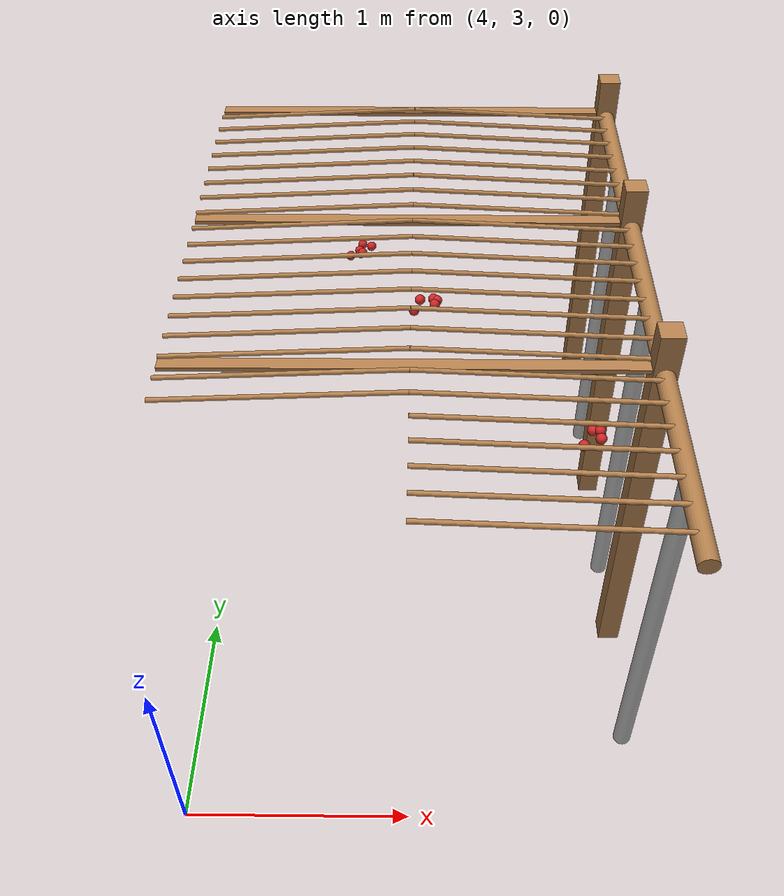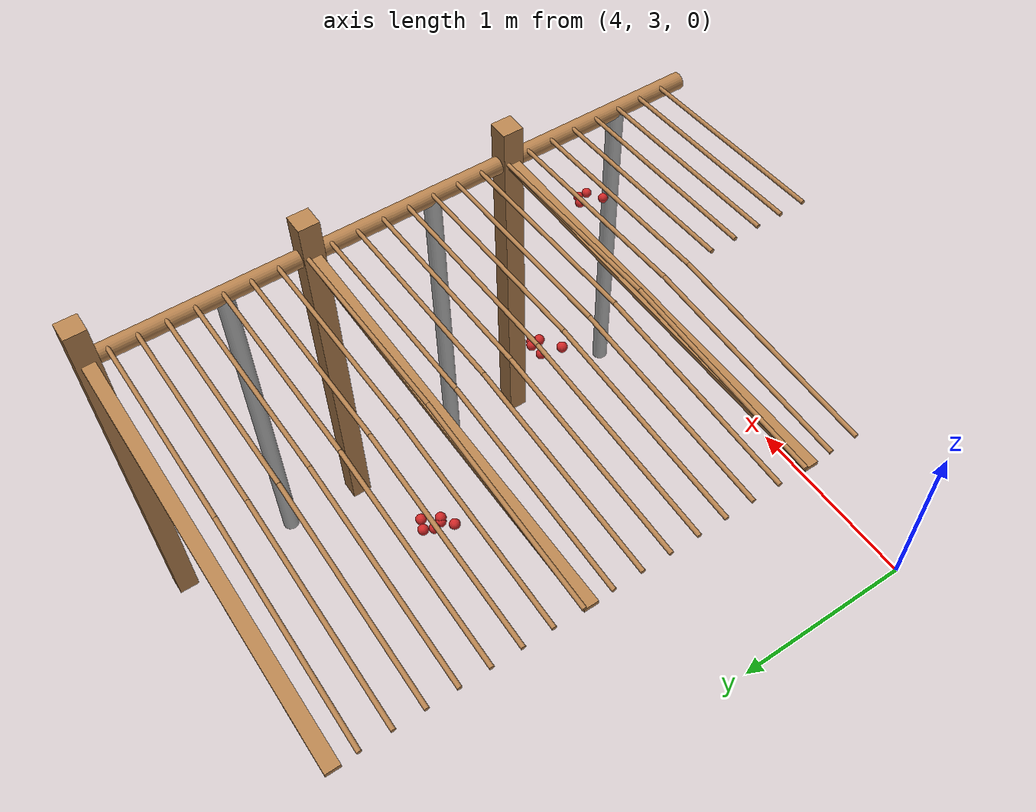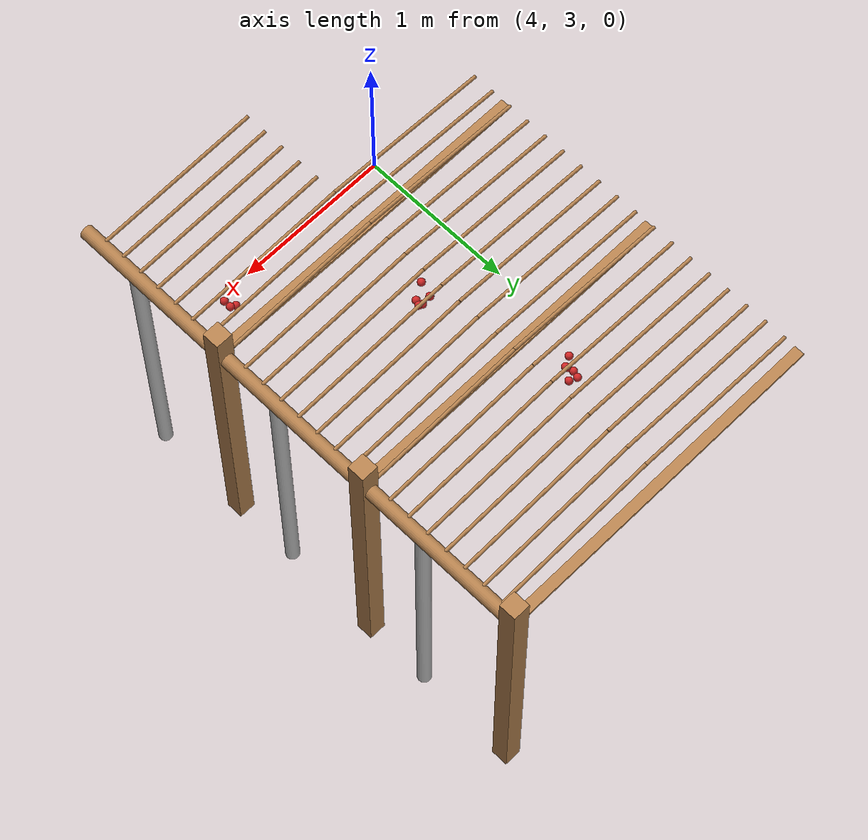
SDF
<sdf version="1.4">
 <model name="pergola">
  <include><name>post_25</name><pose>6.0 4.0 0 0 0 0</pose><uri>model://post</uri></include>
  <include><name>post_26</name><pose>6.0 5.0 0 0 0 0</pose><uri>model://post</uri></include>
  <include><name>post_27</name><pose>6.0 6.0 0 0 0 0</pose><uri>model://post</uri></include>
  <link name="beam_18">
   <pose>5.0 4.0 1.81 0 0 0</pose>
   <collision name="collision"><geometry><box><size>2.0 0.06 0.02</size></box></geometry></collision>
   <visual name="visual">
    <geometry><box><size>2.0 0.06 0.02</size></box></geometry>
    <material><script><name>Gazebo/Wood</name></script></material>
   </visual>
   <inertial>
    <mass>5</mass>
    <inertia>
     <ixx>0.0016666666666666668</ixx>
     <ixy>0.0</ixy>
     <ixz>0.0</ixz>
     <iyy>1.6681666666666664</iyy>
     <iyz>0.0</iyz>
     <izz>1.6668333333333332</izz>
    </inertia>
   </inertial>
  </link>
  <link name="beam_19">
   <pose>5.0 5.0 1.81 0 0 0</pose>
   <collision name="collision"><geometry><box><size>2.0 0.06 0.02</size></box></geometry></collision>
   <visual name="visual">
    <geometry><box><size>2.0 0.06 0.02</size></box></geometry>
    <material><script><name>Gazebo/Wood</name></script></material>
   </visual>
   <inertial>
    <mass>5</mass>
    <inertia>
     <ixx>0.0016666666666666668</ixx>
     <ixy>0.0</ixy>
     <ixz>0.0</ixz>
     <iyy>1.6681666666666664</iyy>
     <iyz>0.0</iyz>
     <izz>1.6668333333333332</izz>
    </inertia>
   </inertial>
  </link>
  <link name="beam_20">
   <pose>5.0 6.0 1.81 0 0 0</pose>
   <collision name="collision"><geometry><box><size>2.0 0.06 0.02</size></box></geometry></collision>
   <visual name="visual">
    <geometry><box><size>2.0 0.06 0.02</size></box></geometry>
    <material><script><name>Gazebo/Wood</name></script></material>
   </visual>
   <inertial>
    <mass>5</mass>
    <inertia>
     <ixx>0.0016666666666666668</ixx>
     <ixy>0.0</ixy>
     <ixz>0.0</ixz>
     <iyy>1.6681666666666664</iyy>
     <iyz>0.0</iyz>
     <izz>1.6668333333333332</izz>
    </inertia>
   </inertial>
  </link>
  <include><name>tree_21</name><pose>6.0 3.4 0 0 0 0</pose><uri>model://tree_trunk</uri></include>
  <include><name>tree_22</name><pose>6.0 4.4 0 0 0 0</pose><uri>model://tree_trunk</uri></include>
  <include><name>tree_23</name><pose>6.0 5.4 0 0 0 0</pose><uri>model://tree_trunk</uri></include>
  <link name="baseBranch_21">
   <pose>6.0 3.5 1.8 1.5707963267948966 0 0</pose>
   <collision name="collision">
    <geometry><cylinder><radius>0.04</radius><length>0.94</length></cylinder></geometry>
   </collision>
   <visual name="visual">
    <geometry><cylinder><radius>0.04</radius><length>0.94</length></cylinder></geometry>
    <material><script><name>Gazebo/WoodFloor</name></script></material>
   </visual>
   <inertial>
    <mass>10</mass>
    <inertia>
     <ixx>0.7403333333333334</ixx>
     <ixy>0.0</ixy>
     <ixz>0.0</ixz>
     <iyy>0.7403333333333334</iyy>
     <iyz>0.0</iyz>
     <izz>0.008</izz>
    </inertia>
   </inertial>
  </link>
  <link name="baseBranch_22">
   <pose>6.0 4.5 1.8 1.5707963267948966 0 0</pose>
   <collision name="collision">
    <geometry><cylinder><radius>0.04</radius><length>0.94</length></cylinder></geometry>
   </collision>
   <visual name="visual">
    <geometry><cylinder><radius>0.04</radius><length>0.94</length></cylinder></geometry>
    <material><script><name>Gazebo/WoodFloor</name></script></material>
   </visual>
   <inertial>
    <mass>10</mass>
    <inertia>
     <ixx>0.7403333333333334</ixx>
     <ixy>0.0</ixy>
     <ixz>0.0</ixz>
     <iyy>0.7403333333333334</iyy>
     <iyz>0.0</iyz>
     <izz>0.008</izz>
    </inertia>
   </inertial>
  </link>
  <link name="baseBranch_23">
   <pose>6.0 5.5 1.8 1.5707963267948966 0 0</pose>
   <collision name="collision">
    <geometry><cylinder><radius>0.04</radius><length>0.94</length></cylinder></geometry>
   </collision>
   <visual name="visual">
    <geometry><cylinder><radius>0.04</radius><length>0.94</length></cylinder></geometry>
    <material><script><name>Gazebo/WoodFloor</name></script></material>
   </visual>
   <inertial>
    <mass>10</mass>
    <inertia>
     <ixx>0.7403333333333334</ixx>
     <ixy>0.0</ixy>
     <ixz>0.0</ixz>
     <iyy>0.7403333333333334</iyy>
     <iyz>0.0</iyz>
     <izz>0.008</izz>
    </inertia>
   </inertial>
  </link>
  <link name="vine_243">
   <pose>5.5 3.155 1.85 0 -1.5208379310729538 0</pose>
   <collision name="collision">
    <geometry><cylinder><radius>0.01</radius><length>1.0012492197250393</length></cylinder></geometry>
   </collision>
   <visual name="visual">
    <geometry><cylinder><radius>0.01</radius><length>1.0012492197250393</length></cylinder></geometry>
    <material><script><name>Gazebo/WoodFloor</name></script></material>
   </visual>
   <inertial>
    <mass>5</mass>
    <inertia>
     <ixx>0.41783333333333345</ixx>
     <ixy>0.0</ixy>
     <ixz>0.0</ixz>
     <iyy>0.41783333333333345</iyy>
     <iyz>0.0</iyz>
     <izz>0.00025</izz>
    </inertia>
   </inertial>
  </link>
  <link name="vine_245">
   <pose>5.5 3.28 1.85 0 -1.5208379310729538 0</pose>
   <collision name="collision">
    <geometry><cylinder><radius>0.01</radius><length>1.0012492197250393</length></cylinder></geometry>
   </collision>
   <visual name="visual">
    <geometry><cylinder><radius>0.01</radius><length>1.0012492197250393</length></cylinder></geometry>
    <material><script><name>Gazebo/WoodFloor</name></script></material>
   </visual>
   <inertial>
    <mass>5</mass>
    <inertia>
     <ixx>0.41783333333333345</ixx>
     <ixy>0.0</ixy>
     <ixz>0.0</ixz>
     <iyy>0.41783333333333345</iyy>
     <iyz>0.0</iyz>
     <izz>0.00025</izz>
    </inertia>
   </inertial>
  </link>
  <link name="vine_247">
   <pose>5.5 3.405 1.85 0 -1.5208379310729538 0</pose>
   <collision name="collision">
    <geometry><cylinder><radius>0.01</radius><length>1.0012492197250393</length></cylinder></geometry>
   </collision>
   <visual name="visual">
    <geometry><cylinder><radius>0.01</radius><length>1.0012492197250393</length></cylinder></geometry>
    <material><script><name>Gazebo/WoodFloor</name></script></material>
   </visual>
   <inertial>
    <mass>5</mass>
    <inertia>
     <ixx>0.41783333333333345</ixx>
     <ixy>0.0</ixy>
     <ixz>0.0</ixz>
     <iyy>0.41783333333333345</iyy>
     <iyz>0.0</iyz>
     <izz>0.00025</izz>
    </inertia>
   </inertial>
  </link>
  <link name="vine_249">
   <pose>5.5 3.53 1.85 0 -1.5208379310729538 0</pose>
   <collision name="collision">
    <geometry><cylinder><radius>0.01</radius><length>1.0012492197250393</length></cylinder></geometry>
   </collision>
   <visual name="visual">
    <geometry><cylinder><radius>0.01</radius><length>1.0012492197250393</length></cylinder></geometry>
    <material><script><name>Gazebo/WoodFloor</name></script></material>
   </visual>
   <inertial>
    <mass>5</mass>
    <inertia>
     <ixx>0.41783333333333345</ixx>
     <ixy>0.0</ixy>
     <ixz>0.0</ixz>
     <iyy>0.41783333333333345</iyy>
     <iyz>0.0</iyz>
     <izz>0.00025</izz>
    </inertia>
   </inertial>
  </link>
  <link name="vine_251">
   <pose>5.5 3.655 1.85 0 -1.5208379310729538 0</pose>
   <collision name="collision">
    <geometry><cylinder><radius>0.01</radius><length>1.0012492197250393</length></cylinder></geometry>
   </collision>
   <visual name="visual">
    <geometry><cylinder><radius>0.01</radius><length>1.0012492197250393</length></cylinder></geometry>
    <material><script><name>Gazebo/WoodFloor</name></script></material>
   </visual>
   <inertial>
    <mass>5</mass>
    <inertia>
     <ixx>0.41783333333333345</ixx>
     <ixy>0.0</ixy>
     <ixz>0.0</ixz>
     <iyy>0.41783333333333345</iyy>
     <iyz>0.0</iyz>
     <izz>0.00025</izz>
    </inertia>
   </inertial>
  </link>
  <link name="vine_252">
   <pose>4.5 3.78 1.85 0 1.5208379310729538 0</pose>
   <collision name="collision">
    <geometry><cylinder><radius>0.01</radius><length>1.0012492197250393</length></cylinder></geometry>
   </collision>
   <visual name="visual">
    <geometry><cylinder><radius>0.01</radius><length>1.0012492197250393</length></cylinder></geometry>
    <material><script><name>Gazebo/WoodFloor</name></script></material>
   </visual>
   <inertial>
    <mass>5</mass>
    <inertia>
     <ixx>0.41783333333333345</ixx>
     <ixy>0.0</ixy>
     <ixz>0.0</ixz>
     <iyy>0.41783333333333345</iyy>
     <iyz>0.0</iyz>
     <izz>0.00025</izz>
    </inertia>
   </inertial>
  </link>
  <link name="vine_253">
   <pose>5.5 3.78 1.85 0 -1.5208379310729538 0</pose>
   <collision name="collision">
    <geometry><cylinder><radius>0.01</radius><length>1.0012492197250393</length></cylinder></geometry>
   </collision>
   <visual name="visual">
    <geometry><cylinder><radius>0.01</radius><length>1.0012492197250393</length></cylinder></geometry>
    <material><script><name>Gazebo/WoodFloor</name></script></material>
   </visual>
   <inertial>
    <mass>5</mass>
    <inertia>
     <ixx>0.41783333333333345</ixx>
     <ixy>0.0</ixy>
     <ixz>0.0</ixz>
     <iyy>0.41783333333333345</iyy>
     <iyz>0.0</iyz>
     <izz>0.00025</izz>
    </inertia>
   </inertial>
  </link>
  <link name="vine_254">
   <pose>4.5 3.905 1.85 0 1.5208379310729538 0</pose>
   <collision name="collision">
    <geometry><cylinder><radius>0.01</radius><length>1.0012492197250393</length></cylinder></geometry>
   </collision>
   <visual name="visual">
    <geometry><cylinder><radius>0.01</radius><length>1.0012492197250393</length></cylinder></geometry>
    <material><script><name>Gazebo/WoodFloor</name></script></material>
   </visual>
   <inertial>
    <mass>5</mass>
    <inertia>
     <ixx>0.41783333333333345</ixx>
     <ixy>0.0</ixy>
     <ixz>0.0</ixz>
     <iyy>0.41783333333333345</iyy>
     <iyz>0.0</iyz>
     <izz>0.00025</izz>
    </inertia>
   </inertial>
  </link>
  <link name="vine_255">
   <pose>5.5 3.905 1.85 0 -1.5208379310729538 0</pose>
   <collision name="collision">
    <geometry><cylinder><radius>0.01</radius><length>1.0012492197250393</length></cylinder></geometry>
   </collision>
   <visual name="visual">
    <geometry><cylinder><radius>0.01</radius><length>1.0012492197250393</length></cylinder></geometry>
    <material><script><name>Gazebo/WoodFloor</name></script></material>
   </visual>
   <inertial>
    <mass>5</mass>
    <inertia>
     <ixx>0.41783333333333345</ixx>
     <ixy>0.0</ixy>
     <ixz>0.0</ixz>
     <iyy>0.41783333333333345</iyy>
     <iyz>0.0</iyz>
     <izz>0.00025</izz>
    </inertia>
   </inertial>
  </link>
  <link name="vine_256">
   <pose>4.5 4.03 1.85 0 1.5208379310729538 0</pose>
   <collision name="collision">
    <geometry><cylinder><radius>0.01</radius><length>1.0012492197250393</length></cylinder></geometry>
   </collision>
   <visual name="visual">
    <geometry><cylinder><radius>0.01</radius><length>1.0012492197250393</length></cylinder></geometry>
    <material><script><name>Gazebo/WoodFloor</name></script></material>
   </visual>
   <inertial>
    <mass>5</mass>
    <inertia>
     <ixx>0.41783333333333345</ixx>
     <ixy>0.0</ixy>
     <ixz>0.0</ixz>
     <iyy>0.41783333333333345</iyy>
     <iyz>0.0</iyz>
     <izz>0.00025</izz>
    </inertia>
   </inertial>
  </link>
  <link name="vine_257">
   <pose>5.5 4.03 1.85 0 -1.5208379310729538 0</pose>
   <collision name="collision">
    <geometry><cylinder><radius>0.01</radius><length>1.0012492197250393</length></cylinder></geometry>
   </collision>
   <visual name="visual">
    <geometry><cylinder><radius>0.01</radius><length>1.0012492197250393</length></cylinder></geometry>
    <material><script><name>Gazebo/WoodFloor</name></script></material>
   </visual>
   <inertial>
    <mass>5</mass>
    <inertia>
     <ixx>0.41783333333333345</ixx>
     <ixy>0.0</ixy>
     <ixz>0.0</ixz>
     <iyy>0.41783333333333345</iyy>
     <iyz>0.0</iyz>
     <izz>0.00025</izz>
    </inertia>
   </inertial>
  </link>
  <link name="vine_258">
   <pose>4.5 4.155 1.85 0 1.5208379310729538 0</pose>
   <collision name="collision">
    <geometry><cylinder><radius>0.01</radius><length>1.0012492197250393</length></cylinder></geometry>
   </collision>
   <visual name="visual">
    <geometry><cylinder><radius>0.01</radius><length>1.0012492197250393</length></cylinder></geometry>
    <material><script><name>Gazebo/WoodFloor</name></script></material>
   </visual>
   <inertial>
    <mass>5</mass>
    <inertia>
     <ixx>0.41783333333333345</ixx>
     <ixy>0.0</ixy>
     <ixz>0.0</ixz>
     <iyy>0.41783333333333345</iyy>
     <iyz>0.0</iyz>
     <izz>0.00025</izz>
    </inertia>
   </inertial>
  </link>
  <link name="vine_259">
   <pose>5.5 4.155 1.85 0 -1.5208379310729538 0</pose>
   <collision name="collision">
    <geometry><cylinder><radius>0.01</radius><length>1.0012492197250393</length></cylinder></geometry>
   </collision>
   <visual name="visual">
    <geometry><cylinder><radius>0.01</radius><length>1.0012492197250393</length></cylinder></geometry>
    <material><script><name>Gazebo/WoodFloor</name></script></material>
   </visual>
   <inertial>
    <mass>5</mass>
    <inertia>
     <ixx>0.41783333333333345</ixx>
     <ixy>0.0</ixy>
     <ixz>0.0</ixz>
     <iyy>0.41783333333333345</iyy>
     <iyz>0.0</iyz>
     <izz>0.00025</izz>
    </inertia>
   </inertial>
  </link>
  <link name="vine_260">
   <pose>4.5 4.28 1.85 0 1.5208379310729538 0</pose>
   <collision name="collision">
    <geometry><cylinder><radius>0.01</radius><length>1.0012492197250393</length></cylinder></geometry>
   </collision>
   <visual name="visual">
    <geometry><cylinder><radius>0.01</radius><length>1.0012492197250393</length></cylinder></geometry>
    <material><script><name>Gazebo/WoodFloor</name></script></material>
   </visual>
   <inertial>
    <mass>5</mass>
    <inertia>
     <ixx>0.41783333333333345</ixx>
     <ixy>0.0</ixy>
     <ixz>0.0</ixz>
     <iyy>0.41783333333333345</iyy>
     <iyz>0.0</iyz>
     <izz>0.00025</izz>
    </inertia>
   </inertial>
  </link>
  <link name="vine_261">
   <pose>5.5 4.28 1.85 0 -1.5208379310729538 0</pose>
   <collision name="collision">
    <geometry><cylinder><radius>0.01</radius><length>1.0012492197250393</length></cylinder></geometry>
   </collision>
   <visual name="visual">
    <geometry><cylinder><radius>0.01</radius><length>1.0012492197250393</length></cylinder></geometry>
    <material><script><name>Gazebo/WoodFloor</name></script></material>
   </visual>
   <inertial>
    <mass>5</mass>
    <inertia>
     <ixx>0.41783333333333345</ixx>
     <ixy>0.0</ixy>
     <ixz>0.0</ixz>
     <iyy>0.41783333333333345</iyy>
     <iyz>0.0</iyz>
     <izz>0.00025</izz>
    </inertia>
   </inertial>
  </link>
  <link name="vine_262">
   <pose>4.5 4.405 1.85 0 1.5208379310729538 0</pose>
   <collision name="collision">
    <geometry><cylinder><radius>0.01</radius><length>1.0012492197250393</length></cylinder></geometry>
   </collision>
   <visual name="visual">
    <geometry><cylinder><radius>0.01</radius><length>1.0012492197250393</length></cylinder></geometry>
    <material><script><name>Gazebo/WoodFloor</name></script></material>
   </visual>
   <inertial>
    <mass>5</mass>
    <inertia>
     <ixx>0.41783333333333345</ixx>
     <ixy>0.0</ixy>
     <ixz>0.0</ixz>
     <iyy>0.41783333333333345</iyy>
     <iyz>0.0</iyz>
     <izz>0.00025</izz>
    </inertia>
   </inertial>
  </link>
  <link name="vine_263">
   <pose>5.5 4.405 1.85 0 -1.5208379310729538 0</pose>
   <collision name="collision">
    <geometry><cylinder><radius>0.01</radius><length>1.0012492197250393</length></cylinder></geometry>
   </collision>
   <visual name="visual">
    <geometry><cylinder><radius>0.01</radius><length>1.0012492197250393</length></cylinder></geometry>
    <material><script><name>Gazebo/WoodFloor</name></script></material>
   </visual>
   <inertial>
    <mass>5</mass>
    <inertia>
     <ixx>0.41783333333333345</ixx>
     <ixy>0.0</ixy>
     <ixz>0.0</ixz>
     <iyy>0.41783333333333345</iyy>
     <iyz>0.0</iyz>
     <izz>0.00025</izz>
    </inertia>
   </inertial>
  </link>
  <link name="vine_264">
   <pose>4.5 4.53 1.85 0 1.5208379310729538 0</pose>
   <collision name="collision">
    <geometry><cylinder><radius>0.01</radius><length>1.0012492197250393</length></cylinder></geometry>
   </collision>
   <visual name="visual">
    <geometry><cylinder><radius>0.01</radius><length>1.0012492197250393</length></cylinder></geometry>
    <material><script><name>Gazebo/WoodFloor</name></script></material>
   </visual>
   <inertial>
    <mass>5</mass>
    <inertia>
     <ixx>0.41783333333333345</ixx>
     <ixy>0.0</ixy>
     <ixz>0.0</ixz>
     <iyy>0.41783333333333345</iyy>
     <iyz>0.0</iyz>
     <izz>0.00025</izz>
    </inertia>
   </inertial>
  </link>
  <link name="vine_265">
   <pose>5.5 4.53 1.85 0 -1.5208379310729538 0</pose>
   <collision name="collision">
    <geometry><cylinder><radius>0.01</radius><length>1.0012492197250393</length></cylinder></geometry>
   </collision>
   <visual name="visual">
    <geometry><cylinder><radius>0.01</radius><length>1.0012492197250393</length></cylinder></geometry>
    <material><script><name>Gazebo/WoodFloor</name></script></material>
   </visual>
   <inertial>
    <mass>5</mass>
    <inertia>
     <ixx>0.41783333333333345</ixx>
     <ixy>0.0</ixy>
     <ixz>0.0</ixz>
     <iyy>0.41783333333333345</iyy>
     <iyz>0.0</iyz>
     <izz>0.00025</izz>
    </inertia>
   </inertial>
  </link>
  <link name="vine_266">
   <pose>4.5 4.655 1.85 0 1.5208379310729538 0</pose>
   <collision name="collision">
    <geometry><cylinder><radius>0.01</radius><length>1.0012492197250393</length></cylinder></geometry>
   </collision>
   <visual name="visual">
    <geometry><cylinder><radius>0.01</radius><length>1.0012492197250393</length></cylinder></geometry>
    <material><script><name>Gazebo/WoodFloor</name></script></material>
   </visual>
   <inertial>
    <mass>5</mass>
    <inertia>
     <ixx>0.41783333333333345</ixx>
     <ixy>0.0</ixy>
     <ixz>0.0</ixz>
     <iyy>0.41783333333333345</iyy>
     <iyz>0.0</iyz>
     <izz>0.00025</izz>
    </inertia>
   </inertial>
  </link>
  <link name="vine_267">
   <pose>5.5 4.655 1.85 0 -1.5208379310729538 0</pose>
   <collision name="collision">
    <geometry><cylinder><radius>0.01</radius><length>1.0012492197250393</length></cylinder></geometry>
   </collision>
   <visual name="visual">
    <geometry><cylinder><radius>0.01</radius><length>1.0012492197250393</length></cylinder></geometry>
    <material><script><name>Gazebo/WoodFloor</name></script></material>
   </visual>
   <inertial>
    <mass>5</mass>
    <inertia>
     <ixx>0.41783333333333345</ixx>
     <ixy>0.0</ixy>
     <ixz>0.0</ixz>
     <iyy>0.41783333333333345</iyy>
     <iyz>0.0</iyz>
     <izz>0.00025</izz>
    </inertia>
   </inertial>
  </link>
  <link name="vine_268">
   <pose>4.5 4.78 1.85 0 1.5208379310729538 0</pose>
   <collision name="collision">
    <geometry><cylinder><radius>0.01</radius><length>1.0012492197250393</length></cylinder></geometry>
   </collision>
   <visual name="visual">
    <geometry><cylinder><radius>0.01</radius><length>1.0012492197250393</length></cylinder></geometry>
    <material><script><name>Gazebo/WoodFloor</name></script></material>
   </visual>
   <inertial>
    <mass>5</mass>
    <inertia>
     <ixx>0.41783333333333345</ixx>
     <ixy>0.0</ixy>
     <ixz>0.0</ixz>
     <iyy>0.41783333333333345</iyy>
     <iyz>0.0</iyz>
     <izz>0.00025</izz>
    </inertia>
   </inertial>
  </link>
  <link name="vine_269">
   <pose>5.5 4.78 1.85 0 -1.5208379310729538 0</pose>
   <collision name="collision">
    <geometry><cylinder><radius>0.01</radius><length>1.0012492197250393</length></cylinder></geometry>
   </collision>
   <visual name="visual">
    <geometry><cylinder><radius>0.01</radius><length>1.0012492197250393</length></cylinder></geometry>
    <material><script><name>Gazebo/WoodFloor</name></script></material>
   </visual>
   <inertial>
    <mass>5</mass>
    <inertia>
     <ixx>0.41783333333333345</ixx>
     <ixy>0.0</ixy>
     <ixz>0.0</ixz>
     <iyy>0.41783333333333345</iyy>
     <iyz>0.0</iyz>
     <izz>0.00025</izz>
    </inertia>
   </inertial>
  </link>
  <link name="vine_270">
   <pose>4.5 4.905 1.85 0 1.5208379310729538 0</pose>
   <collision name="collision">
    <geometry><cylinder><radius>0.01</radius><length>1.0012492197250393</length></cylinder></geometry>
   </collision>
   <visual name="visual">
    <geometry><cylinder><radius>0.01</radius><length>1.0012492197250393</length></cylinder></geometry>
    <material><script><name>Gazebo/WoodFloor</name></script></material>
   </visual>
   <inertial>
    <mass>5</mass>
    <inertia>
     <ixx>0.41783333333333345</ixx>
     <ixy>0.0</ixy>
     <ixz>0.0</ixz>
     <iyy>0.41783333333333345</iyy>
     <iyz>0.0</iyz>
     <izz>0.00025</izz>
    </inertia>
   </inertial>
  </link>
  <link name="vine_271">
   <pose>5.5 4.905 1.85 0 -1.5208379310729538 0</pose>
   <collision name="collision">
    <geometry><cylinder><radius>0.01</radius><length>1.0012492197250393</length></cylinder></geometry>
   </collision>
   <visual name="visual">
    <geometry><cylinder><radius>0.01</radius><length>1.0012492197250393</length></cylinder></geometry>
    <material><script><name>Gazebo/WoodFloor</name></script></material>
   </visual>
   <inertial>
    <mass>5</mass>
    <inertia>
     <ixx>0.41783333333333345</ixx>
     <ixy>0.0</ixy>
     <ixz>0.0</ixz>
     <iyy>0.41783333333333345</iyy>
     <iyz>0.0</iyz>
     <izz>0.00025</izz>
    </inertia>
   </inertial>
  </link>
  <link name="vine_272">
   <pose>4.5 5.03 1.85 0 1.5208379310729538 0</pose>
   <collision name="collision">
    <geometry><cylinder><radius>0.01</radius><length>1.0012492197250393</length></cylinder></geometry>
   </collision>
   <visual name="visual">
    <geometry><cylinder><radius>0.01</radius><length>1.0012492197250393</length></cylinder></geometry>
    <material><script><name>Gazebo/WoodFloor</name></script></material>
   </visual>
   <inertial>
    <mass>5</mass>
    <inertia>
     <ixx>0.41783333333333345</ixx>
     <ixy>0.0</ixy>
     <ixz>0.0</ixz>
     <iyy>0.41783333333333345</iyy>
     <iyz>0.0</iyz>
     <izz>0.00025</izz>
    </inertia>
   </inertial>
  </link>
  <link name="vine_273">
   <pose>5.5 5.03 1.85 0 -1.5208379310729538 0</pose>
   <collision name="collision">
    <geometry><cylinder><radius>0.01</radius><length>1.0012492197250393</length></cylinder></geometry>
   </collision>
   <visual name="visual">
    <geometry><cylinder><radius>0.01</radius><length>1.0012492197250393</length></cylinder></geometry>
    <material><script><name>Gazebo/WoodFloor</name></script></material>
   </visual>
   <inertial>
    <mass>5</mass>
    <inertia>
     <ixx>0.41783333333333345</ixx>
     <ixy>0.0</ixy>
     <ixz>0.0</ixz>
     <iyy>0.41783333333333345</iyy>
     <iyz>0.0</iyz>
     <izz>0.00025</izz>
    </inertia>
   </inertial>
  </link>
  <link name="vine_274">
   <pose>4.5 5.155 1.85 0 1.5208379310729538 0</pose>
   <collision name="collision">
    <geometry><cylinder><radius>0.01</radius><length>1.0012492197250393</length></cylinder></geometry>
   </collision>
   <visual name="visual">
    <geometry><cylinder><radius>0.01</radius><length>1.0012492197250393</length></cylinder></geometry>
    <material><script><name>Gazebo/WoodFloor</name></script></material>
   </visual>
   <inertial>
    <mass>5</mass>
    <inertia>
     <ixx>0.41783333333333345</ixx>
     <ixy>0.0</ixy>
     <ixz>0.0</ixz>
     <iyy>0.41783333333333345</iyy>
     <iyz>0.0</iyz>
     <izz>0.00025</izz>
    </inertia>
   </inertial>
  </link>
  <link name="vine_275">
   <pose>5.5 5.155 1.85 0 -1.5208379310729538 0</pose>
   <collision name="collision">
    <geometry><cylinder><radius>0.01</radius><length>1.0012492197250393</length></cylinder></geometry>
   </collision>
   <visual name="visual">
    <geometry><cylinder><radius>0.01</radius><length>1.0012492197250393</length></cylinder></geometry>
    <material><script><name>Gazebo/WoodFloor</name></script></material>
   </visual>
   <inertial>
    <mass>5</mass>
    <inertia>
     <ixx>0.41783333333333345</ixx>
     <ixy>0.0</ixy>
     <ixz>0.0</ixz>
     <iyy>0.41783333333333345</iyy>
     <iyz>0.0</iyz>
     <izz>0.00025</izz>
    </inertia>
   </inertial>
  </link>
  <link name="vine_276">
   <pose>4.5 5.28 1.85 0 1.5208379310729538 0</pose>
   <collision name="collision">
    <geometry><cylinder><radius>0.01</radius><length>1.0012492197250393</length></cylinder></geometry>
   </collision>
   <visual name="visual">
    <geometry><cylinder><radius>0.01</radius><length>1.0012492197250393</length></cylinder></geometry>
    <material><script><name>Gazebo/WoodFloor</name></script></material>
   </visual>
   <inertial>
    <mass>5</mass>
    <inertia>
     <ixx>0.41783333333333345</ixx>
     <ixy>0.0</ixy>
     <ixz>0.0</ixz>
     <iyy>0.41783333333333345</iyy>
     <iyz>0.0</iyz>
     <izz>0.00025</izz>
    </inertia>
   </inertial>
  </link>
  <link name="vine_277">
   <pose>5.5 5.28 1.85 0 -1.5208379310729538 0</pose>
   <collision name="collision">
    <geometry><cylinder><radius>0.01</radius><length>1.0012492197250393</length></cylinder></geometry>
   </collision>
   <visual name="visual">
    <geometry><cylinder><radius>0.01</radius><length>1.0012492197250393</length></cylinder></geometry>
    <material><script><name>Gazebo/WoodFloor</name></script></material>
   </visual>
   <inertial>
    <mass>5</mass>
    <inertia>
     <ixx>0.41783333333333345</ixx>
     <ixy>0.0</ixy>
     <ixz>0.0</ixz>
     <iyy>0.41783333333333345</iyy>
     <iyz>0.0</iyz>
     <izz>0.00025</izz>
    </inertia>
   </inertial>
  </link>
  <link name="vine_278">
   <pose>4.5 5.405 1.85 0 1.5208379310729538 0</pose>
   <collision name="collision">
    <geometry><cylinder><radius>0.01</radius><length>1.0012492197250393</length></cylinder></geometry>
   </collision>
   <visual name="visual">
    <geometry><cylinder><radius>0.01</radius><length>1.0012492197250393</length></cylinder></geometry>
    <material><script><name>Gazebo/WoodFloor</name></script></material>
   </visual>
   <inertial>
    <mass>5</mass>
    <inertia>
     <ixx>0.41783333333333345</ixx>
     <ixy>0.0</ixy>
     <ixz>0.0</ixz>
     <iyy>0.41783333333333345</iyy>
     <iyz>0.0</iyz>
     <izz>0.00025</izz>
    </inertia>
   </inertial>
  </link>
  <link name="vine_279">
   <pose>5.5 5.405 1.85 0 -1.5208379310729538 0</pose>
   <collision name="collision">
    <geometry><cylinder><radius>0.01</radius><length>1.0012492197250393</length></cylinder></geometry>
   </collision>
   <visual name="visual">
    <geometry><cylinder><radius>0.01</radius><length>1.0012492197250393</length></cylinder></geometry>
    <material><script><name>Gazebo/WoodFloor</name></script></material>
   </visual>
   <inertial>
    <mass>5</mass>
    <inertia>
     <ixx>0.41783333333333345</ixx>
     <ixy>0.0</ixy>
     <ixz>0.0</ixz>
     <iyy>0.41783333333333345</iyy>
     <iyz>0.0</iyz>
     <izz>0.00025</izz>
    </inertia>
   </inertial>
  </link>
  <link name="vine_280">
   <pose>4.5 5.53 1.85 0 1.5208379310729538 0</pose>
   <collision name="collision">
    <geometry><cylinder><radius>0.01</radius><length>1.0012492197250393</length></cylinder></geometry>
   </collision>
   <visual name="visual">
    <geometry><cylinder><radius>0.01</radius><length>1.0012492197250393</length></cylinder></geometry>
    <material><script><name>Gazebo/WoodFloor</name></script></material>
   </visual>
   <inertial>
    <mass>5</mass>
    <inertia>
     <ixx>0.41783333333333345</ixx>
     <ixy>0.0</ixy>
     <ixz>0.0</ixz>
     <iyy>0.41783333333333345</iyy>
     <iyz>0.0</iyz>
     <izz>0.00025</izz>
    </inertia>
   </inertial>
  </link>
  <link name="vine_281">
   <pose>5.5 5.53 1.85 0 -1.5208379310729538 0</pose>
   <collision name="collision">
    <geometry><cylinder><radius>0.01</radius><length>1.0012492197250393</length></cylinder></geometry>
   </collision>
   <visual name="visual">
    <geometry><cylinder><radius>0.01</radius><length>1.0012492197250393</length></cylinder></geometry>
    <material><script><name>Gazebo/WoodFloor</name></script></material>
   </visual>
   <inertial>
    <mass>5</mass>
    <inertia>
     <ixx>0.41783333333333345</ixx>
     <ixy>0.0</ixy>
     <ixz>0.0</ixz>
     <iyy>0.41783333333333345</iyy>
     <iyz>0.0</iyz>
     <izz>0.00025</izz>
    </inertia>
   </inertial>
  </link>
  <link name="vine_282">
   <pose>4.5 5.655 1.85 0 1.5208379310729538 0</pose>
   <collision name="collision">
    <geometry><cylinder><radius>0.01</radius><length>1.0012492197250393</length></cylinder></geometry>
   </collision>
   <visual name="visual">
    <geometry><cylinder><radius>0.01</radius><length>1.0012492197250393</length></cylinder></geometry>
    <material><script><name>Gazebo/WoodFloor</name></script></material>
   </visual>
   <inertial>
    <mass>5</mass>
    <inertia>
     <ixx>0.41783333333333345</ixx>
     <ixy>0.0</ixy>
     <ixz>0.0</ixz>
     <iyy>0.41783333333333345</iyy>
     <iyz>0.0</iyz>
     <izz>0.00025</izz>
    </inertia>
   </inertial>
  </link>
  <link name="vine_283">
   <pose>5.5 5.655 1.85 0 -1.5208379310729538 0</pose>
   <collision name="collision">
    <geometry><cylinder><radius>0.01</radius><length>1.0012492197250393</length></cylinder></geometry>
   </collision>
   <visual name="visual">
    <geometry><cylinder><radius>0.01</radius><length>1.0012492197250393</length></cylinder></geometry>
    <material><script><name>Gazebo/WoodFloor</name></script></material>
   </visual>
   <inertial>
    <mass>5</mass>
    <inertia>
     <ixx>0.41783333333333345</ixx>
     <ixy>0.0</ixy>
     <ixz>0.0</ixz>
     <iyy>0.41783333333333345</iyy>
     <iyz>0.0</iyz>
     <izz>0.00025</izz>
    </inertia>
   </inertial>
  </link>
  <link name="vine_284">
   <pose>4.5 5.78 1.85 0 1.5208379310729538 0</pose>
   <collision name="collision">
    <geometry><cylinder><radius>0.01</radius><length>1.0012492197250393</length></cylinder></geometry>
   </collision>
   <visual name="visual">
    <geometry><cylinder><radius>0.01</radius><length>1.0012492197250393</length></cylinder></geometry>
    <material><script><name>Gazebo/WoodFloor</name></script></material>
   </visual>
   <inertial>
    <mass>5</mass>
    <inertia>
     <ixx>0.41783333333333345</ixx>
     <ixy>0.0</ixy>
     <ixz>0.0</ixz>
     <iyy>0.41783333333333345</iyy>
     <iyz>0.0</iyz>
     <izz>0.00025</izz>
    </inertia>
   </inertial>
  </link>
  <link name="vine_285">
   <pose>5.5 5.78 1.85 0 -1.5208379310729538 0</pose>
   <collision name="collision">
    <geometry><cylinder><radius>0.01</radius><length>1.0012492197250393</length></cylinder></geometry>
   </collision>
   <visual name="visual">
    <geometry><cylinder><radius>0.01</radius><length>1.0012492197250393</length></cylinder></geometry>
    <material><script><name>Gazebo/WoodFloor</name></script></material>
   </visual>
   <inertial>
    <mass>5</mass>
    <inertia>
     <ixx>0.41783333333333345</ixx>
     <ixy>0.0</ixy>
     <ixz>0.0</ixz>
     <iyy>0.41783333333333345</iyy>
     <iyz>0.0</iyz>
     <izz>0.00025</izz>
    </inertia>
   </inertial>
  </link>
  <link name="vine_286">
   <pose>4.5 5.905 1.85 0 1.5208379310729538 0</pose>
   <collision name="collision">
    <geometry><cylinder><radius>0.01</radius><length>1.0012492197250393</length></cylinder></geometry>
   </collision>
   <visual name="visual">
    <geometry><cylinder><radius>0.01</radius><length>1.0012492197250393</length></cylinder></geometry>
    <material><script><name>Gazebo/WoodFloor</name></script></material>
   </visual>
   <inertial>
    <mass>5</mass>
    <inertia>
     <ixx>0.41783333333333345</ixx>
     <ixy>0.0</ixy>
     <ixz>0.0</ixz>
     <iyy>0.41783333333333345</iyy>
     <iyz>0.0</iyz>
     <izz>0.00025</izz>
    </inertia>
   </inertial>
  </link>
  <link name="vine_287">
   <pose>5.5 5.905 1.85 0 -1.5208379310729538 0</pose>
   <collision name="collision">
    <geometry><cylinder><radius>0.01</radius><length>1.0012492197250393</length></cylinder></geometry>
   </collision>
   <visual name="visual">
    <geometry><cylinder><radius>0.01</radius><length>1.0012492197250393</length></cylinder></geometry>
    <material><script><name>Gazebo/WoodFloor</name></script></material>
   </visual>
   <inertial>
    <mass>5</mass>
    <inertia>
     <ixx>0.41783333333333345</ixx>
     <ixy>0.0</ixy>
     <ixz>0.0</ixz>
     <iyy>0.41783333333333345</iyy>
     <iyz>0.0</iyz>
     <izz>0.00025</izz>
    </inertia>
   </inertial>
  </link>
  <link name="fruit_22">
   <pose>5.012237971652464 4.402993824453046 1.76141915692125 0 0 0</pose>
   <collision name="fruit_collision_22"><geometry><sphere><radius>0.022</radius></sphere></geometry></collision>
   <visual name="visual">
    <geometry><sphere><radius>0.022</radius></sphere></geometry>
    <material><script><name>Gazebo/Red</name></script></material>
   </visual>
   <inertial>
    <mass>0.05</mass>
    <inertia>
     <ixx>9.679999999999999e-06</ixx>
     <ixy>0.0</ixy>
     <ixz>0.0</ixz>
     <iyy>9.679999999999999e-06</iyy>
     <iyz>0.0</iyz>
     <izz>9.679999999999999e-06</izz>
    </inertia>
   </inertial>
   <sensor name="fruit_contact_22" type="contact">
    <contact><collision>fruit_collision_22</collision></contact>
   </sensor>
  </link>
  <link name="fruit_23">
   <pose>4.695731434344679 5.126244135350355 1.5163954400585882 0 0 0</pose>
   <collision name="fruit_collision_23"><geometry><sphere><radius>0.022</radius></sphere></geometry></collision>
   <visual name="visual">
    <geometry><sphere><radius>0.022</radius></sphere></geometry>
    <material><script><name>Gazebo/Red</name></script></material>
   </visual>
   <inertial>
    <mass>0.05</mass>
    <inertia>
     <ixx>9.679999999999999e-06</ixx>
     <ixy>0.0</ixy>
     <ixz>0.0</ixz>
     <iyy>9.679999999999999e-06</iyy>
     <iyz>0.0</iyz>
     <izz>9.679999999999999e-06</izz>
    </inertia>
   </inertial>
   <sensor name="fruit_contact_23" type="contact">
    <contact><collision>fruit_collision_23</collision></contact>
   </sensor>
  </link>
  <link name="fruit_26">
   <pose>5.671730246971974 3.706711641062542 1.6689412955132856 0 0 0</pose>
   <collision name="fruit_collision_26"><geometry><sphere><radius>0.022</radius></sphere></geometry></collision>
   <visual name="visual">
    <geometry><sphere><radius>0.022</radius></sphere></geometry>
    <material><script><name>Gazebo/Red</name></script></material>
   </visual>
   <inertial>
    <mass>0.05</mass>
    <inertia>
     <ixx>9.679999999999999e-06</ixx>
     <ixy>0.0</ixy>
     <ixz>0.0</ixz>
     <iyy>9.679999999999999e-06</iyy>
     <iyz>0.0</iyz>
     <izz>9.679999999999999e-06</izz>
    </inertia>
   </inertial>
   <sensor name="fruit_contact_26" type="contact">
    <contact><collision>fruit_collision_26</collision></contact>
   </sensor>
  </link>
  <link name="fruit_35">
   <pose>5.716205509870219 3.8009873885321217 1.6560555271753008 0 0 0</pose>
   <collision name="fruit_collision_35"><geometry><sphere><radius>0.022</radius></sphere></geometry></collision>
   <visual name="visual">
    <geometry><sphere><radius>0.022</radius></sphere></geometry>
    <material><script><name>Gazebo/Red</name></script></material>
   </visual>
   <inertial>
    <mass>0.05</mass>
    <inertia>
     <ixx>9.679999999999999e-06</ixx>
     <ixy>0.0</ixy>
     <ixz>0.0</ixz>
     <iyy>9.679999999999999e-06</iyy>
     <iyz>0.0</iyz>
     <izz>9.679999999999999e-06</izz>
    </inertia>
   </inertial>
   <sensor name="fruit_contact_35" type="contact">
    <contact><collision>fruit_collision_35</collision></contact>
   </sensor>
  </link>
  <link name="fruit_37">
   <pose>4.741910614286819 5.161369872713184 1.5038826311544164 0 0 0</pose>
   <collision name="fruit_collision_37"><geometry><sphere><radius>0.022</radius></sphere></geometry></collision>
   <visual name="visual">
    <geometry><sphere><radius>0.022</radius></sphere></geometry>
    <material><script><name>Gazebo/Red</name></script></material>
   </visual>
   <inertial>
    <mass>0.05</mass>
    <inertia>
     <ixx>9.679999999999999e-06</ixx>
     <ixy>0.0</ixy>
     <ixz>0.0</ixz>
     <iyy>9.679999999999999e-06</iyy>
     <iyz>0.0</iyz>
     <izz>9.679999999999999e-06</izz>
    </inertia>
   </inertial>
   <sensor name="fruit_contact_37" type="contact">
    <contact><collision>fruit_collision_37</collision></contact>
   </sensor>
  </link>
  <link name="fruit_38">
   <pose>5.110053232496233 4.482638883236997 1.7533447558637725 0 0 0</pose>
   <collision name="fruit_collision_38"><geometry><sphere><radius>0.022</radius></sphere></geometry></collision>
   <visual name="visual">
    <geometry><sphere><radius>0.022</radius></sphere></geometry>
    <material><script><name>Gazebo/Red</name></script></material>
   </visual>
   <inertial>
    <mass>0.05</mass>
    <inertia>
     <ixx>9.679999999999999e-06</ixx>
     <ixy>0.0</ixy>
     <ixz>0.0</ixz>
     <iyy>9.679999999999999e-06</iyy>
     <iyz>0.0</iyz>
     <izz>9.679999999999999e-06</izz>
    </inertia>
   </inertial>
   <sensor name="fruit_contact_38" type="contact">
    <contact><collision>fruit_collision_38</collision></contact>
   </sensor>
  </link>
  <link name="fruit_44">
   <pose>5.743810514914859 3.7910222720489277 1.665870338473422 0 0 0</pose>
   <collision name="fruit_collision_44"><geometry><sphere><radius>0.022</radius></sphere></geometry></collision>
   <visual name="visual">
    <geometry><sphere><radius>0.022</radius></sphere></geometry>
    <material><script><name>Gazebo/Red</name></script></material>
   </visual>
   <inertial>
    <mass>0.05</mass>
    <inertia>
     <ixx>9.679999999999999e-06</ixx>
     <ixy>0.0</ixy>
     <ixz>0.0</ixz>
     <iyy>9.679999999999999e-06</iyy>
     <iyz>0.0</iyz>
     <izz>9.679999999999999e-06</izz>
    </inertia>
   </inertial>
   <sensor name="fruit_contact_44" type="contact">
    <contact><collision>fruit_collision_44</collision></contact>
   </sensor>
  </link>
  <link name="fruit_53">
   <pose>5.036679779027552 4.486551998952374 1.7537476492495954 0 0 0</pose>
   <collision name="fruit_collision_53"><geometry><sphere><radius>0.022</radius></sphere></geometry></collision>
   <visual name="visual">
    <geometry><sphere><radius>0.022</radius></sphere></geometry>
    <material><script><name>Gazebo/Red</name></script></material>
   </visual>
   <inertial>
    <mass>0.05</mass>
    <inertia>
     <ixx>9.679999999999999e-06</ixx>
     <ixy>0.0</ixy>
     <ixz>0.0</ixz>
     <iyy>9.679999999999999e-06</iyy>
     <iyz>0.0</iyz>
     <izz>9.679999999999999e-06</izz>
    </inertia>
   </inertial>
   <sensor name="fruit_contact_53" type="contact">
    <contact><collision>fruit_collision_53</collision></contact>
   </sensor>
  </link>
  <link name="fruit_54">
   <pose>5.742954648643973 3.7462858091593874 1.6651880773464827 0 0 0</pose>
   <collision name="fruit_collision_54"><geometry><sphere><radius>0.022</radius></sphere></geometry></collision>
   <visual name="visual">
    <geometry><sphere><radius>0.022</radius></sphere></geometry>
    <material><script><name>Gazebo/Red</name></script></material>
   </visual>
   <inertial>
    <mass>0.05</mass>
    <inertia>
     <ixx>9.679999999999999e-06</ixx>
     <ixy>0.0</ixy>
     <ixz>0.0</ixz>
     <iyy>9.679999999999999e-06</iyy>
     <iyz>0.0</iyz>
     <izz>9.679999999999999e-06</izz>
    </inertia>
   </inertial>
   <sensor name="fruit_contact_54" type="contact">
    <contact><collision>fruit_collision_54</collision></contact>
   </sensor>
  </link>
  <link name="fruit_55">
   <pose>5.094058716441132 4.492537746400266 1.7540850124444056 0 0 0</pose>
   <collision name="fruit_collision_55"><geometry><sphere><radius>0.022</radius></sphere></geometry></collision>
   <visual name="visual">
    <geometry><sphere><radius>0.022</radius></sphere></geometry>
    <material><script><name>Gazebo/Red</name></script></material>
   </visual>
   <inertial>
    <mass>0.05</mass>
    <inertia>
     <ixx>9.679999999999999e-06</ixx>
     <ixy>0.0</ixy>
     <ixz>0.0</ixz>
     <iyy>9.679999999999999e-06</iyy>
     <iyz>0.0</iyz>
     <izz>9.679999999999999e-06</izz>
    </inertia>
   </inertial>
   <sensor name="fruit_contact_55" type="contact">
    <contact><collision>fruit_collision_55</collision></contact>
   </sensor>
  </link>
  <link name="fruit_60">
   <pose>4.748766036496286 5.235871253118534 1.506087044380746 0 0 0</pose>
   <collision name="fruit_collision_60"><geometry><sphere><radius>0.022</radius></sphere></geometry></collision>
   <visual name="visual">
    <geometry><sphere><radius>0.022</radius></sphere></geometry>
    <material><script><name>Gazebo/Red</name></script></material>
   </visual>
   <inertial>
    <mass>0.05</mass>
    <inertia>
     <ixx>9.679999999999999e-06</ixx>
     <ixy>0.0</ixy>
     <ixz>0.0</ixz>
     <iyy>9.679999999999999e-06</iyy>
     <iyz>0.0</iyz>
     <izz>9.679999999999999e-06</izz>
    </inertia>
   </inertial>
   <sensor name="fruit_contact_60" type="contact">
    <contact><collision>fruit_collision_60</collision></contact>
   </sensor>
  </link>
  <link name="fruit_61">
   <pose>4.792814442341512 5.218523497812081 1.5059353644957412 0 0 0</pose>
   <collision name="fruit_collision_61"><geometry><sphere><radius>0.022</radius></sphere></geometry></collision>
   <visual name="visual">
    <geometry><sphere><radius>0.022</radius></sphere></geometry>
    <material><script><name>Gazebo/Red</name></script></material>
   </visual>
   <inertial>
    <mass>0.05</mass>
    <inertia>
     <ixx>9.679999999999999e-06</ixx>
     <ixy>0.0</ixy>
     <ixz>0.0</ixz>
     <iyy>9.679999999999999e-06</iyy>
     <iyz>0.0</iyz>
     <izz>9.679999999999999e-06</izz>
    </inertia>
   </inertial>
   <sensor name="fruit_contact_61" type="contact">
    <contact><collision>fruit_collision_61</collision></contact>
   </sensor>
  </link>
  <link name="fruit_69">
   <pose>4.75150079924797 5.154675903450041 1.514426087091515 0 0 0</pose>
   <collision name="fruit_collision_69"><geometry><sphere><radius>0.022</radius></sphere></geometry></collision>
   <visual name="visual">
    <geometry><sphere><radius>0.022</radius></sphere></geometry>
    <material><script><name>Gazebo/Red</name></script></material>
   </visual>
   <inertial>
    <mass>0.05</mass>
    <inertia>
     <ixx>9.679999999999999e-06</ixx>
     <ixy>0.0</ixy>
     <ixz>0.0</ixz>
     <iyy>9.679999999999999e-06</iyy>
     <iyz>0.0</iyz>
     <izz>9.679999999999999e-06</izz>
    </inertia>
   </inertial>
   <sensor name="fruit_contact_69" type="contact">
    <contact><collision>fruit_collision_69</collision></contact>
   </sensor>
  </link>
  <link name="fruit_77">
   <pose>4.734339650617406 5.194362914288393 1.4980515470468205 0 0 0</pose>
   <collision name="fruit_collision_77"><geometry><sphere><radius>0.022</radius></sphere></geometry></collision>
   <visual name="visual">
    <geometry><sphere><radius>0.022</radius></sphere></geometry>
    <material><script><name>Gazebo/Red</name></script></material>
   </visual>
   <inertial>
    <mass>0.05</mass>
    <inertia>
     <ixx>9.679999999999999e-06</ixx>
     <ixy>0.0</ixy>
     <ixz>0.0</ixz>
     <iyy>9.679999999999999e-06</iyy>
     <iyz>0.0</iyz>
     <izz>9.679999999999999e-06</izz>
    </inertia>
   </inertial>
   <sensor name="fruit_contact_77" type="contact">
    <contact><collision>fruit_collision_77</collision></contact>
   </sensor>
  </link>
  <link name="fruit_96">
   <pose>5.099889098779977 4.4539076269284426 1.7542703616783626 0 0 0</pose>
   <collision name="fruit_collision_96"><geometry><sphere><radius>0.022</radius></sphere></geometry></collision>
   <visual name="visual">
    <geometry><sphere><radius>0.022</radius></sphere></geometry>
    <material><script><name>Gazebo/Red</name></script></material>
   </visual>
   <inertial>
    <mass>0.05</mass>
    <inertia>
     <ixx>9.679999999999999e-06</ixx>
     <ixy>0.0</ixy>
     <ixz>0.0</ixz>
     <iyy>9.679999999999999e-06</iyy>
     <iyz>0.0</iyz>
     <izz>9.679999999999999e-06</izz>
    </inertia>
   </inertial>
   <sensor name="fruit_contact_96" type="contact">
    <contact><collision>fruit_collision_96</collision></contact>
   </sensor>
  </link>
 </model>
</sdf>
